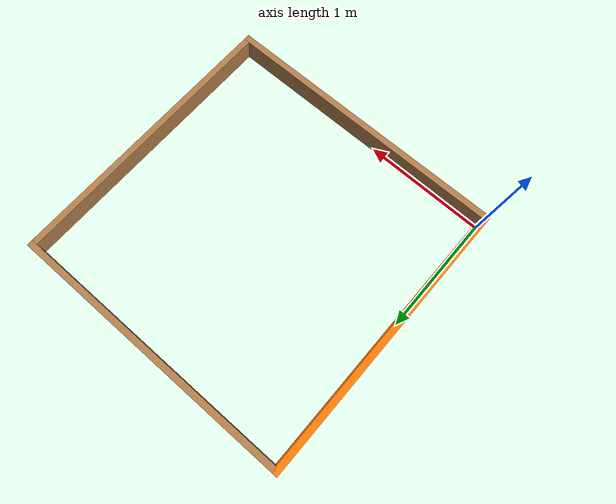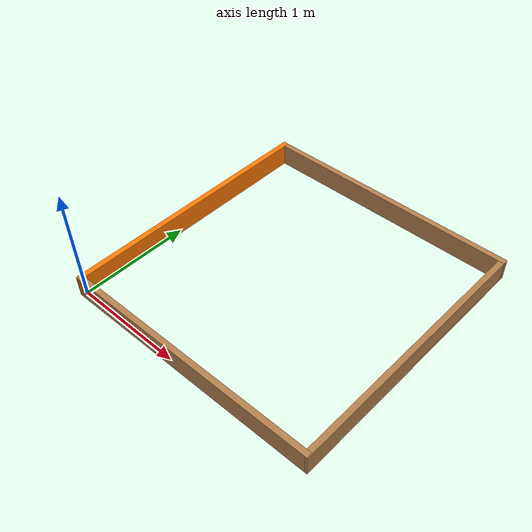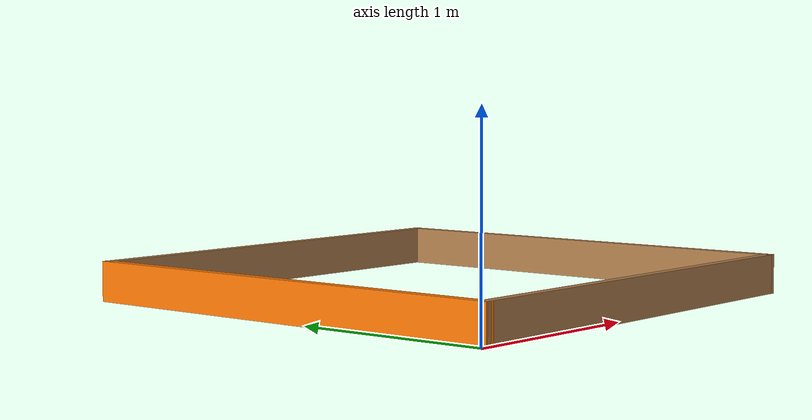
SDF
<?xml version='1.0'?>
<sdf version='1.6'>
  <model name='boundry'>
    <pose frame=''>1.17936 1.16349 0 0 -0 0</pose>
    <link name='Wall_0'>
      <collision name='Wall_0_Collision'>
        <geometry>
          <box>
            <size>2.37732 0.05 0.2</size>
          </box>
        </geometry>
        <pose frame=''>0 0 0.1 0 -0 0</pose>
      </collision>
      <visual name='Wall_0_Visual'>
        <pose frame=''>0 0 0.1 0 -0 0</pose>
        <geometry>
          <box>
            <size>2.37732 0.05 0.2</size>
          </box>
        </geometry>
        <material>
          <script>
            <uri>file://media/materials/scripts/gazebo.material</uri>
            <name>Gazebo/Wood</name>
          </script>
          <ambient>0.996078 0.47451 0.0196078 1</ambient>
        </material>
      </visual>
      <pose frame=''>-0.008489 -1.17505 0 0 -0 0.007257</pose>
    </link>
    <link name='Wall_14'>
      <collision name='Wall_14_Collision'>
        <geometry>
          <box>
            <size>2.4 0.05 0.2</size>
          </box>
        </geometry>
        <pose frame=''>0 0 0.1 0 -0 0</pose>
      </collision>
      <visual name='Wall_14_Visual'>
        <pose frame=''>0 0 0.1 0 -0 0</pose>
        <geometry>
          <box>
            <size>2.4 0.05 0.2</size>
          </box>
        </geometry>
        <material>
          <script>
            <uri>file://media/materials/scripts/gazebo.material</uri>
            <name>Gazebo/Grey</name>
          </script>
          <ambient>0.996078 0.47451 0.0196078 1</ambient>
        </material>
      </visual>
      <pose frame=''>-1.17524 -0.008491 0 0 -0 1.56702</pose>
    </link>
    <link name='Wall_2'>
      <collision name='Wall_2_Collision'>
        <geometry>
          <box>
            <size>2.4 0.05 0.2</size>
          </box>
        </geometry>
        <pose frame=''>0 0 0.1 0 -0 0</pose>
      </collision>
      <visual name='Wall_2_Visual'>
        <pose frame=''>0 0 0.1 0 -0 0</pose>
        <geometry>
          <box>
            <size>2.4 0.05 0.2</size>
          </box>
        </geometry>
        <material>
          <script>
            <uri>file://media/materials/scripts/gazebo.material</uri>
            <name>Gazebo/Wood</name>
          </script>
          <ambient>0.996078 0.47451 0.0196078 1</ambient>
        </material>
      </visual>
      <pose frame=''>1.17115 0.008444 0 0 -0 1.56361</pose>
    </link>
    <link name='Wall_4'>
      <collision name='Wall_4_Collision'>
        <geometry>
          <box>
            <size>2.39289 0.05 0.2</size>
          </box>
        </geometry>
        <pose frame=''>0 0 0.1 0 -0 0</pose>
      </collision>
      <visual name='Wall_4_Visual'>
        <pose frame=''>0 0 0.1 0 -0 0</pose>
        <geometry>
          <box>
            <size>2.39289 0.05 0.2</size>
          </box>
        </geometry>
        <material>
          <script>
            <uri>file://media/materials/scripts/gazebo.material</uri>
            <name>Gazebo/Wood</name>
          </script>
          <ambient>0.996078 0.47451 0.0196078 1</ambient>
        </material>
      </visual>
      <pose frame=''>0.008176 1.175 0 0 0 -3.13434</pose>
    </link>
    <static>1</static>
  </model>
</sdf>
